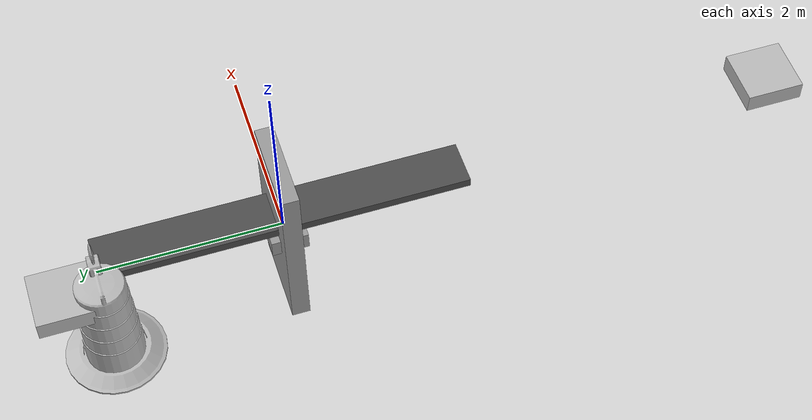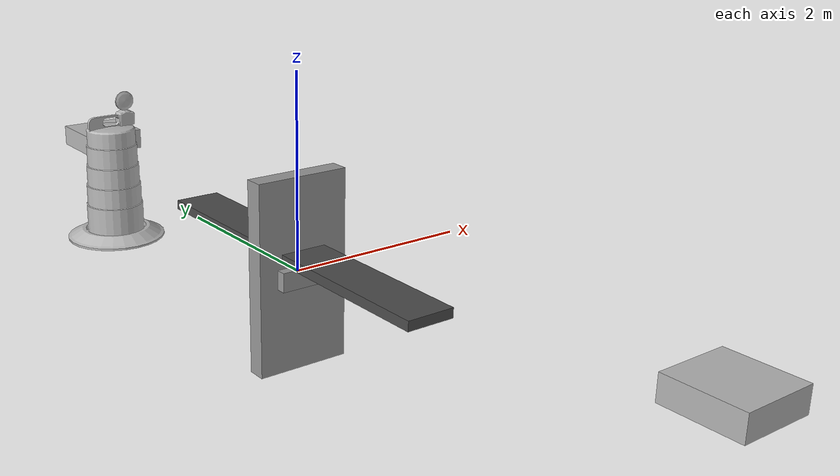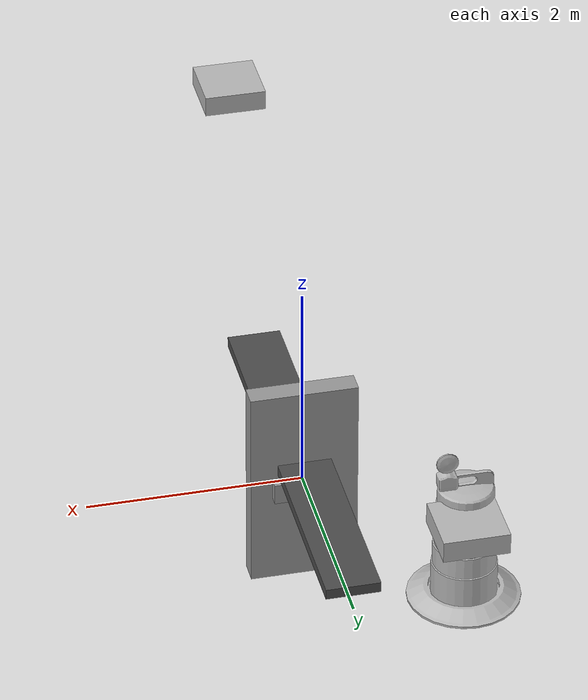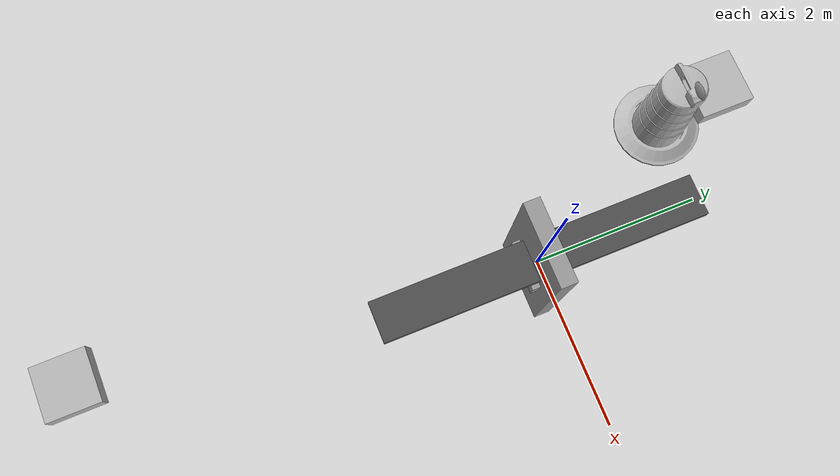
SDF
<sdf version='1.6'>
  <world name='default'>
    <model name="unit_box">
      <link name="link">
        <pose frame="">0 0 0 0 -0 0</pose>
        <visual name="visual">
          <geometry>
            <box>
              <size>0.6 0.4 0.2</size>
            </box>
          </geometry>
          <material>
            <script>
              <name>Gazebo/Grey</name>
              <uri>file://media/materials/scripts/gazebo.material</uri>
            </script>
            <ambient>0.3 0.3 0.3 1</ambient>
            <diffuse>0.7 0.7 0.7 1</diffuse>
            <specular>0.01 0.01 0.01 1</specular>
            <emissive>0 0 0 1</emissive>
          </material>
          <pose frame="">0 0 0 0 -0 0</pose>
          <transparency>0</transparency>
          <cast_shadows>1</cast_shadows>
        </visual>
      </link>
      <static>1</static>
      <allow_auto_disable>1</allow_auto_disable>
    </model>
    <model name="Construction Barrel">
      <link name="link">
        <collision name='collision'>
          <geometry>
            <mesh>
              <uri>model://construction_barrel/meshes/construction_barrel.dae</uri>
              <scale>1 1 1</scale>
            </mesh>
          </geometry>
          <max_contacts>10</max_contacts>
          <surface>
            <contact>
              <ode/>
            </contact>
            <bounce/>
            <friction>
              <torsional>
                <ode/>
              </torsional>
              <ode/>
            </friction>
          </surface>
        </collision>
        <visual name="visual">
          <geometry>
            <mesh>
              <uri>model://construction_barrel/meshes/construction_barrel.dae</uri>
            </mesh>
          </geometry>
        </visual>
      </link>
      <pose>-1 2 0 0 -0 0</pose>
      <static>1</static>
    </model>
    <model name='asphalt_plane'>
      <static>1</static>
      <link name='link'>
        <visual name='visual'>
          <cast_shadows>0</cast_shadows>
          <geometry>
            <box>
              <size>0.5 4 0.1</size>
            </box>
          </geometry>
          <material>
            <script>
              <uri>model://asphalt_plane/materials/scripts</uri>
              <uri>model://asphalt_plane/materials/textures</uri>
              <name>vrc/asphalt</name>
            </script>
          </material>
        </visual>
        <self_collide>0</self_collide>
        <kinematic>0</kinematic>
      </link>
      <pose frame=''>0 0 0.2 0 -0 0</pose>
    </model>
    <model name="grey_wall">
      <static>1</static>
      <link name="link">
        <visual name="visual">
          <cast_shadows>0</cast_shadows>
          <geometry>
            <box>
              <size>1.0 0.2 2</size>
            </box>
          </geometry>
          <material>
            <script>
              <uri>model://grey_wall/materials/scripts</uri>
              <uri>model://grey_wall/materials/textures</uri>
              <name>vrc/grey_wall</name>
            </script>
          </material>
        </visual>
      </link>
      <pose frame="">0 0 0 0 -0 0</pose>
    </model>
    <model name='box_target_green'>
      <static>1</static>
      <link name='link'>
        <pose frame=''>-0.461684 -5.14704 1 0 -0 0</pose>
        <collision name='collision'>
          <geometry>
            <box>
              <size>6 6 2</size>
            </box>
          </geometry>
          <max_contacts>10</max_contacts>
          <surface>
            <contact>
              <ode/>
            </contact>
            <bounce/>
            <friction>
              <torsional>
                <ode/>
              </torsional>
              <ode/>
            </friction>
          </surface>
        </collision>
        <visual name='visual'>
          <geometry>
            <mesh>
              <uri>model://box_target_green/meshes/mesh.dae</uri>
              <scale>0.1 0.1 0.1</scale>
            </mesh>
          </geometry>
        </visual>
        <self_collide>0</self_collide>
        <kinematic>0</kinematic>
      </link>
    </model>
    <model name='box_target_red'>
      <static>1</static>
      <link name='link'>
        <pose frame=''>-0.929546 2.36464 1 0 -0 0</pose>
        <collision name='collision'>
          <geometry>
            <box>
              <size>6 6 2</size>
            </box>
          </geometry>
          <max_contacts>10</max_contacts>
          <surface>
            <contact>
              <ode/>
            </contact>
            <bounce/>
            <friction>
              <torsional>
                <ode/>
              </torsional>
              <ode/>
            </friction>
          </surface>
        </collision>
        <visual name='visual'>
          <geometry>
            <mesh>
              <uri>model://box_target_red/meshes/mesh.dae</uri>
              <scale>0.1 0.1 0.1</scale>
            </mesh>
          </geometry>
        </visual>
        <self_collide>0</self_collide>
        <kinematic>0</kinematic>
      </link>
    </model>
  </world>
</sdf>
